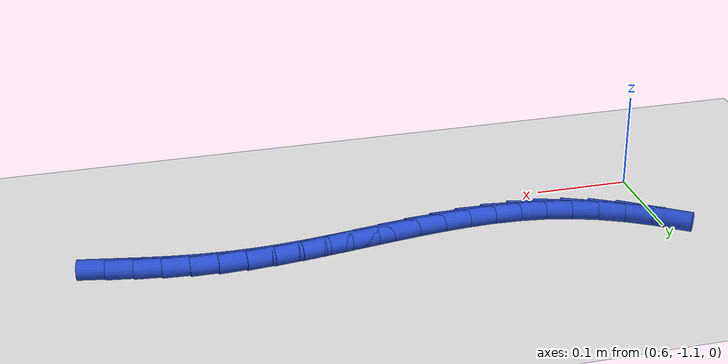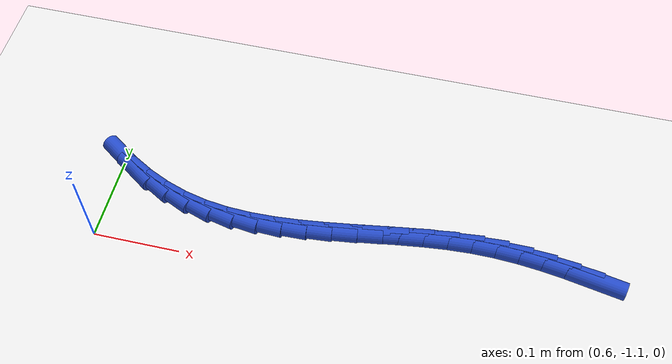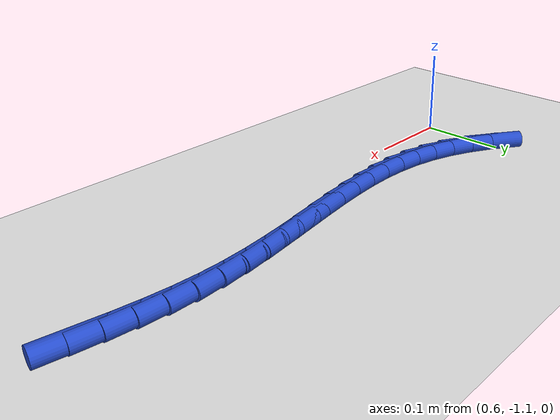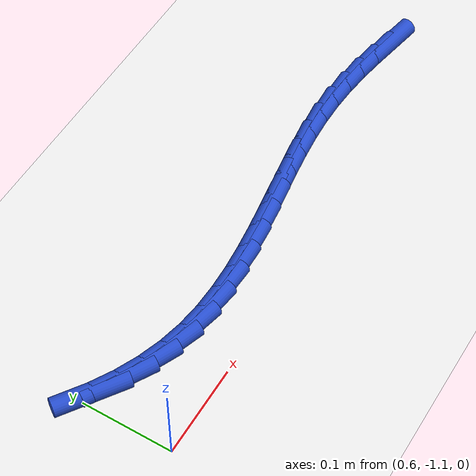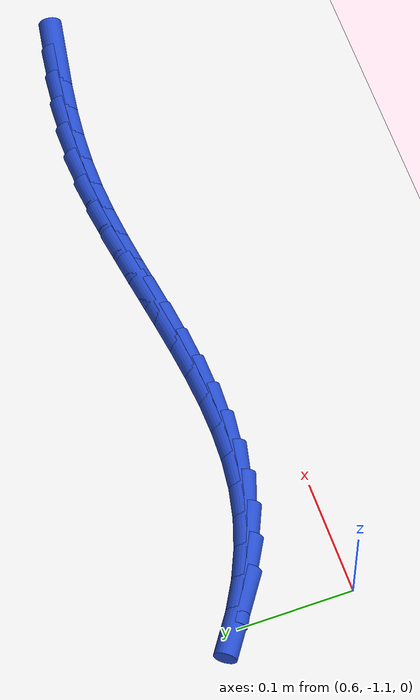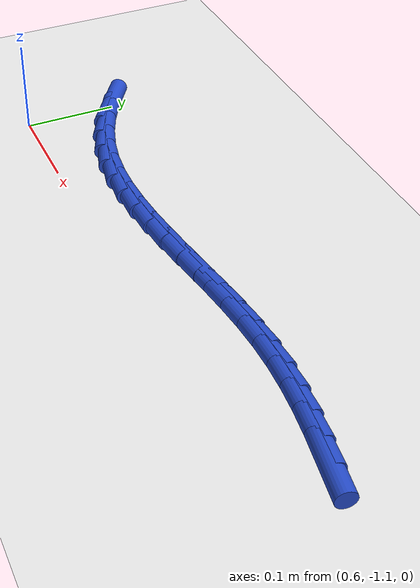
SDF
<sdf version="1.6">
 <world name="default">
  <model name="ground_plane">
   <static>1</static>
   <link name="link">
    <collision name="collision">
     <geometry><plane><normal>0 0 1</normal><size>100 100</size></plane></geometry>
     <surface><friction><ode><mu>100</mu><mu2>50</mu2></ode></friction></surface>
    </collision>
    <visual name="visual">
     <cast_shadows>0</cast_shadows>
     <geometry><plane><normal>0 0 1</normal><size>100 100</size></plane></geometry>
     <material>
      <script><uri>file://media/materials/scripts/gazebo.material</uri><name>Gazebo/WhiteGlow</name></script>
     </material>
    </visual>
   </link>
  </model>
  <model name="line">
   <link name="link_186">
    <pose>1.1503338434031374 -1.0355650402750265 0.01 0 1.57 -0.184249874346185</pose>
    <collision name="collision">
     <geometry><cylinder><radius>0.01</radius><length>0.08</length></cylinder></geometry>
    </collision>
    <visual name="visual">
     <material>
      <script><name>Gazebo/Blue</name><uri>file://media/materials/scripts/gazebo.material</uri></script>
     </material>
     <geometry><cylinder><radius>0.01</radius><length>0.08</length></cylinder></geometry>
    </visual>
   </link>
   <link name="link_187">
    <pose>1.1238028637000246 -1.0306206326156406 0.01 0 1.57 -0.1499699297887282</pose>
    <collision name="collision">
     <geometry><cylinder><radius>0.01</radius><length>0.08</length></cylinder></geometry>
    </collision>
    <visual name="visual">
     <material>
      <script><name>Gazebo/Blue</name><uri>file://media/materials/scripts/gazebo.material</uri></script>
     </material>
     <geometry><cylinder><radius>0.01</radius><length>0.08</length></cylinder></geometry>
    </visual>
   </link>
   <link name="link_188">
    <pose>1.0974079308866551 -1.0266322405163821 0.01 0 1.57 -0.10767874365689528</pose>
    <collision name="collision">
     <geometry><cylinder><radius>0.01</radius><length>0.08</length></cylinder></geometry>
    </collision>
    <visual name="visual">
     <material>
      <script><name>Gazebo/Blue</name><uri>file://media/materials/scripts/gazebo.material</uri></script>
     </material>
     <geometry><cylinder><radius>0.01</radius><length>0.08</length></cylinder></geometry>
    </visual>
   </link>
   <link name="link_189">
    <pose>1.0710147677542372 -1.0237792226965206 0.01 0 1.57 -0.057927425844589604</pose>
    <collision name="collision">
     <geometry><cylinder><radius>0.01</radius><length>0.08</length></cylinder></geometry>
    </collision>
    <visual name="visual">
     <material>
      <script><name>Gazebo/Blue</name><uri>file://media/materials/scripts/gazebo.material</uri></script>
     </material>
     <geometry><cylinder><radius>0.01</radius><length>0.08</length></cylinder></geometry>
    </visual>
   </link>
   <link name="link_190">
    <pose>1.044489097093977 -1.0222409378753246 0.01 0 1.57 -0.0016494592424587794</pose>
    <collision name="collision">
     <geometry><cylinder><radius>0.01</radius><length>0.08</length></cylinder></geometry>
    </collision>
    <visual name="visual">
     <material>
      <script><name>Gazebo/Blue</name><uri>file://media/materials/scripts/gazebo.material</uri></script>
     </material>
     <geometry><cylinder><radius>0.01</radius><length>0.08</length></cylinder></geometry>
    </visual>
   </link>
   <link name="link_191">
    <pose>1.0176966416970834 -1.022196744772063 0.01 0 1.57 0.0566551970221488</pose>
    <collision name="collision">
     <geometry><cylinder><radius>0.01</radius><length>0.08</length></cylinder></geometry>
    </collision>
    <visual name="visual">
     <material>
      <script><name>Gazebo/Blue</name><uri>file://media/materials/scripts/gazebo.material</uri></script>
     </material>
     <geometry><cylinder><radius>0.01</radius><length>0.08</length></cylinder></geometry>
    </visual>
   </link>
   <link name="link_192">
    <pose>0.9905350474659267 -1.0237372388292432 0.01 0 1.57 0.10262233856512272</pose>
    <collision name="collision">
     <geometry><cylinder><radius>0.01</radius><length>0.08</length></cylinder></geometry>
    </collision>
    <visual name="visual">
     <material>
      <script><name>Gazebo/Blue</name><uri>file://media/materials/scripts/gazebo.material</uri></script>
     </material>
     <geometry><cylinder><radius>0.01</radius><length>0.08</length></cylinder></geometry>
    </visual>
   </link>
   <link name="link_193">
    <pose>0.9630401492395056 -1.0265687765358333 0.01 0 1.57 0.133412620780311</pose>
    <collision name="collision">
     <geometry><cylinder><radius>0.01</radius><length>0.08</length></cylinder></geometry>
    </collision>
    <visual name="visual">
     <material>
      <script><name>Gazebo/Blue</name><uri>file://media/materials/scripts/gazebo.material</uri></script>
     </material>
     <geometry><cylinder><radius>0.01</radius><length>0.08</length></cylinder></geometry>
    </visual>
   </link>
   <link name="link_194">
    <pose>0.9352851653874263 -1.0302937682254079 0.01 0 1.57 0.14992500246399973</pose>
    <collision name="collision">
     <geometry><cylinder><radius>0.01</radius><length>0.08</length></cylinder></geometry>
    </collision>
    <visual name="visual">
     <material>
      <script><name>Gazebo/Blue</name><uri>file://media/materials/scripts/gazebo.material</uri></script>
     </material>
     <geometry><cylinder><radius>0.01</radius><length>0.08</length></cylinder></geometry>
    </visual>
   </link>
   <link name="link_195">
    <pose>0.9073433149099732 -1.0345146224779211 0.01 0 1.57 0.15275012645260155</pose>
    <collision name="collision">
     <geometry><cylinder><radius>0.01</radius><length>0.08</length></cylinder></geometry>
    </collision>
    <visual name="visual">
     <material>
      <script><name>Gazebo/Blue</name><uri>file://media/materials/scripts/gazebo.material</uri></script>
     </material>
     <geometry><cylinder><radius>0.01</radius><length>0.08</length></cylinder></geometry>
    </visual>
   </link>
   <link name="link_196">
    <pose>0.8792878168074296 -1.0388337478733285 0.01 0 1.57 0.14210986453389582</pose>
    <collision name="collision">
     <geometry><cylinder><radius>0.01</radius><length>0.08</length></cylinder></geometry>
    </collision>
    <visual name="visual">
     <material>
      <script><name>Gazebo/Blue</name><uri>file://media/materials/scripts/gazebo.material</uri></script>
     </material>
     <geometry><cylinder><radius>0.01</radius><length>0.08</length></cylinder></geometry>
    </visual>
   </link>
   <link name="link_197">
    <pose>0.8511918900800796 -1.0428535529915839 0.01 0 1.57 0.11785900516754921</pose>
    <collision name="collision">
     <geometry><cylinder><radius>0.01</radius><length>0.08</length></cylinder></geometry>
    </collision>
    <visual name="visual">
     <material>
      <script><name>Gazebo/Blue</name><uri>file://media/materials/scripts/gazebo.material</uri></script>
     </material>
     <geometry><cylinder><radius>0.01</radius><length>0.08</length></cylinder></geometry>
    </visual>
   </link>
   <link name="link_198">
    <pose>0.8231287537282069 -1.046176446412642 0.01 0 1.57 0.07953925394492552</pose>
    <collision name="collision">
     <geometry><cylinder><radius>0.01</radius><length>0.08</length></cylinder></geometry>
    </collision>
    <visual name="visual">
     <material>
      <script><name>Gazebo/Blue</name><uri>file://media/materials/scripts/gazebo.material</uri></script>
     </material>
     <geometry><cylinder><radius>0.01</radius><length>0.08</length></cylinder></geometry>
    </visual>
   </link>
   <link name="link_199">
    <pose>0.7951716267520956 -1.0484048367164576 0.01 0 1.57 0.02650032712098313</pose>
    <collision name="collision">
     <geometry><cylinder><radius>0.01</radius><length>0.08</length></cylinder></geometry>
    </collision>
    <visual name="visual">
     <material>
      <script><name>Gazebo/Blue</name><uri>file://media/materials/scripts/gazebo.material</uri></script>
     </material>
     <geometry><cylinder><radius>0.01</radius><length>0.08</length></cylinder></geometry>
    </visual>
   </link>
   <link name="link_200">
    <pose>0.7673937281520296 -1.0491411324829854 0.01 0 1.57 -0.041878181671384726</pose>
    <collision name="collision">
     <geometry><cylinder><radius>0.01</radius><length>0.08</length></cylinder></geometry>
    </collision>
    <visual name="visual">
     <material>
      <script><name>Gazebo/Blue</name><uri>file://media/materials/scripts/gazebo.material</uri></script>
     </material>
     <geometry><cylinder><radius>0.01</radius><length>0.08</length></cylinder></geometry>
    </visual>
   </link>
   <link name="link_201">
    <pose>0.7398682769282924 -1.0479877422921797 0.01 0 1.57 -0.1258278366333193</pose>
    <collision name="collision">
     <geometry><cylinder><radius>0.01</radius><length>0.08</length></cylinder></geometry>
    </collision>
    <visual name="visual">
     <material>
      <script><name>Gazebo/Blue</name><uri>file://media/materials/scripts/gazebo.material</uri></script>
     </material>
     <geometry><cylinder><radius>0.01</radius><length>0.08</length></cylinder></geometry>
    </visual>
   </link>
   <link name="link_202">
    <pose>0.7126684920811682 -1.0445470747239953 0.01 0 1.57 -0.2245171221838545</pose>
    <collision name="collision">
     <geometry><cylinder><radius>0.01</radius><length>0.08</length></cylinder></geometry>
    </collision>
    <visual name="visual">
     <material>
      <script><name>Gazebo/Blue</name><uri>file://media/materials/scripts/gazebo.material</uri></script>
     </material>
     <geometry><cylinder><radius>0.01</radius><length>0.08</length></cylinder></geometry>
    </visual>
   </link>
   <link name="link_203">
    <pose>0.6858686327810015 -1.0384268644622763 0.01 0 1.57 -0.32832581799481</pose>
    <collision name="collision">
     <geometry><cylinder><radius>0.01</radius><length>0.08</length></cylinder></geometry>
    </collision>
    <visual name="visual">
     <material>
      <script><name>Gazebo/Blue</name><uri>file://media/materials/scripts/gazebo.material</uri></script>
     </material>
     <geometry><cylinder><radius>0.01</radius><length>0.08</length></cylinder></geometry>
    </visual>
   </link>
   <link name="link_204">
    <pose>0.6595898301574935 -1.0294748501425695 0.01 0 1.57 -0.42598789247786933</pose>
    <collision name="collision">
     <geometry><cylinder><radius>0.01</radius><length>0.08</length></cylinder></geometry>
    </collision>
    <visual name="visual">
     <material>
      <script><name>Gazebo/Blue</name><uri>file://media/materials/scripts/gazebo.material</uri></script>
     </material>
     <geometry><cylinder><radius>0.01</radius><length>0.08</length></cylinder></geometry>
    </visual>
   </link>
   <link name="link_205">
    <pose>0.6340181125986767 -1.0178710713894996 0.01 0 1.57 -0.5176712294521071</pose>
    <collision name="collision">
     <geometry><cylinder><radius>0.01</radius><length>0.08</length></cylinder></geometry>
    </collision>
    <visual name="visual">
     <material>
      <script><name>Gazebo/Blue</name><uri>file://media/materials/scripts/gazebo.material</uri></script>
     </material>
     <geometry><cylinder><radius>0.01</radius><length>0.08</length></cylinder></geometry>
    </visual>
   </link>
   <link name="link_206">
    <pose>0.6093442737998392 -1.0038199681853508 0.01 0 1.57 -0.6045636283979942</pose>
    <collision name="collision">
     <geometry><cylinder><radius>0.01</radius><length>0.08</length></cylinder></geometry>
    </collision>
    <visual name="visual">
     <material>
      <script><name>Gazebo/Blue</name><uri>file://media/materials/scripts/gazebo.material</uri></script>
     </material>
     <geometry><cylinder><radius>0.01</radius><length>0.08</length></cylinder></geometry>
    </visual>
   </link>
  </model>
 </world>
</sdf>
